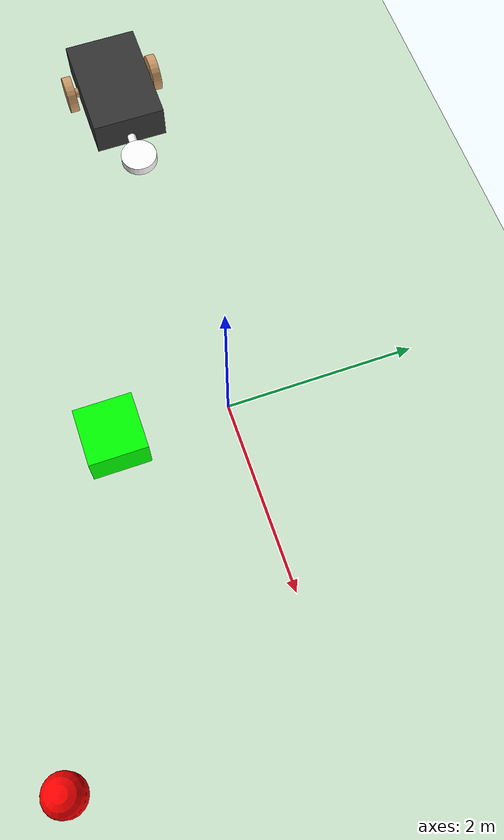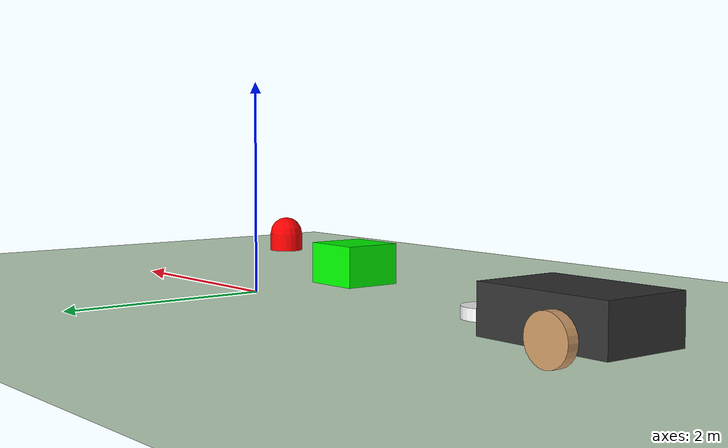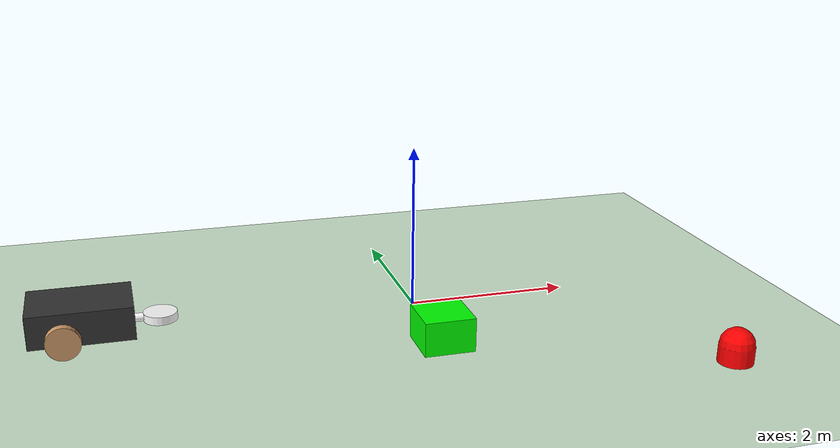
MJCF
<?xml version="1.0" encoding="utf-8"?>
<mujoco model="bot_sim">
	<compiler angle="degree" coordinate="local" inertiafromgeom="true"/>
	<option integrator="RK4" timestep="0.01"/>
	<default>
		<joint armature="1" damping="1" limited="true"/>
		<geom conaffinity="0" condim="3" density="1.0" friction="1 0.5 0.5" margin="0.01" rgba="0.8 0.6 0.4 1"/>
	</default>
	<asset>
		<texture builtin="gradient" height="100" rgb1="1 1 1" rgb2="0 0 0" type="skybox" width="100"/>
		<texture builtin="flat" height="1278" mark="cross" markrgb="1 1 1" name="texgeom" random="0.01" rgb1="0.8 0.6 0.4" rgb2="0.8 0.6 0.4" type="cube" width="127"/>
		<texture builtin="checker" height="100" name="texplane" rgb1="0.3 0.3 0.3" rgb2="0.5 0.5 0.5" type="2d" width="100"/>
		<material name="MatPlane" reflectance="0.1" shininess="1" specular="1" texrepeat="60 60" texture="texplane"/>
		<material name="geom" texture="texgeom" texuniform="true"/>
	</asset>
	<worldbody>
		<light cutoff="100" diffuse="1 1 1" dir="0 0 -1.3" directional="true" exponent="1" pos="0 0 1.3" specular="0.1 0.1 0.1"/>
		<geom conaffinity="1" condim="3" material="MatPlane" name="floor" pos="0 0 0" rgba="0.8 0.9 0.8 1" size="40 40 40" type="plane"/>
		<camera name="overhead1" pos="0 -4 6.5" euler = "20 0 0"/>

        <body name="block" pos="0 -1.2 0">
			<joint armature="0" damping="1" limited="false" margin="0.01" name="root2" pos="0 0 0" type="free"/>
			<geom name="block_geom" pos="0 0 0" size="0.3 0.3 0.4" type="box" rgba = "0 1 0 0.9"/>
		</body>

		<body name="target" pos="3 -2.5 0">
			<geom name="target_geom" pos="0 0 0" size="0.2 0.2" type="capsule" rgba = "1 0 0 1"/>
		</body>

		<body name="torso" pos = "-4 0 0">
			<geom name="torso_geom"  pos="0 0 0.3" size="0.6 0.4 0.2" type="box" rgba = "0.2 0.2 0.2 1"/>
			<joint armature="0" damping="0" limited="false"  name="root" type="free"/>

			<body name="front_connect">
				<geom fromto="0.5 0 0.1 0.5 0 0.05" name="front_geom_connect" size="0.05" type="capsule"/>
				<body name="front_ball" pos="0.5 0 0.05" >
					<geom name="ball" size="0.05" type="sphere"/>
				</body>
			</body>

			<body name="grabber">
				<geom fromto="0.55 0 0.2 0.7 0 0.2" name="arm" density = "0.5" size="0.05" type="capsule" rgba = "1 1 1 1"/>
				<body name="paw">
					<geom name = "geom_paw" pos="0.9 0 0.2" density = "1" type="cylinder" size = "0.2 0.05" rgba = "1 1 1 1"/>
				</body>
			</body>

			<body name="right_shaft">
				<geom fromto="-0.2 0.5 0.2 -0.2 0.3 0.2" name="right_geom_shaft" size="0.05" type="capsule"/>
				<joint name="joint_torso_right_shaft" range="-90 90" type="hinge" axis = "0 -1 0" pos = '-0.2 0.3 0.2'/>
				<body name="wheel_right">
					<geom name="wheel_right_geom" density="4" pos="-0.2 0.5 0.2" size="0.2 0.05" type="cylinder" euler = '90 0 0'/>
				</body>
			</body>

			<body name="left_shaft">
				<geom fromto="-0.2 -0.5 0.2 -0.2 -0.3 0.2" name="left_geom_shaft" size="0.05" type="capsule"/>
				<joint name="joint_torso_left_shaft" range="-90 90" type="hinge" axis = "0 -1 0" pos = '-0.2 -0.3 0.2'/>
				<body name="wheel_left" >
					<geom name="wheel_left_geom" density="4" pos="-0.2 -0.5 0.2"  size="0.2 0.05" type="cylinder" euler = '90 0 0'/>
				</body>
			</body>
		</body>

	</worldbody>
	<actuator>

		<motor ctrllimited="true" ctrlrange="-1.0 1.0" gear = "50" joint = "joint_torso_right_shaft"/>
		<motor ctrllimited="true" ctrlrange="-1.0 1.0" gear = "50" joint = "joint_torso_left_shaft"/>

	</actuator>
</mujoco>
